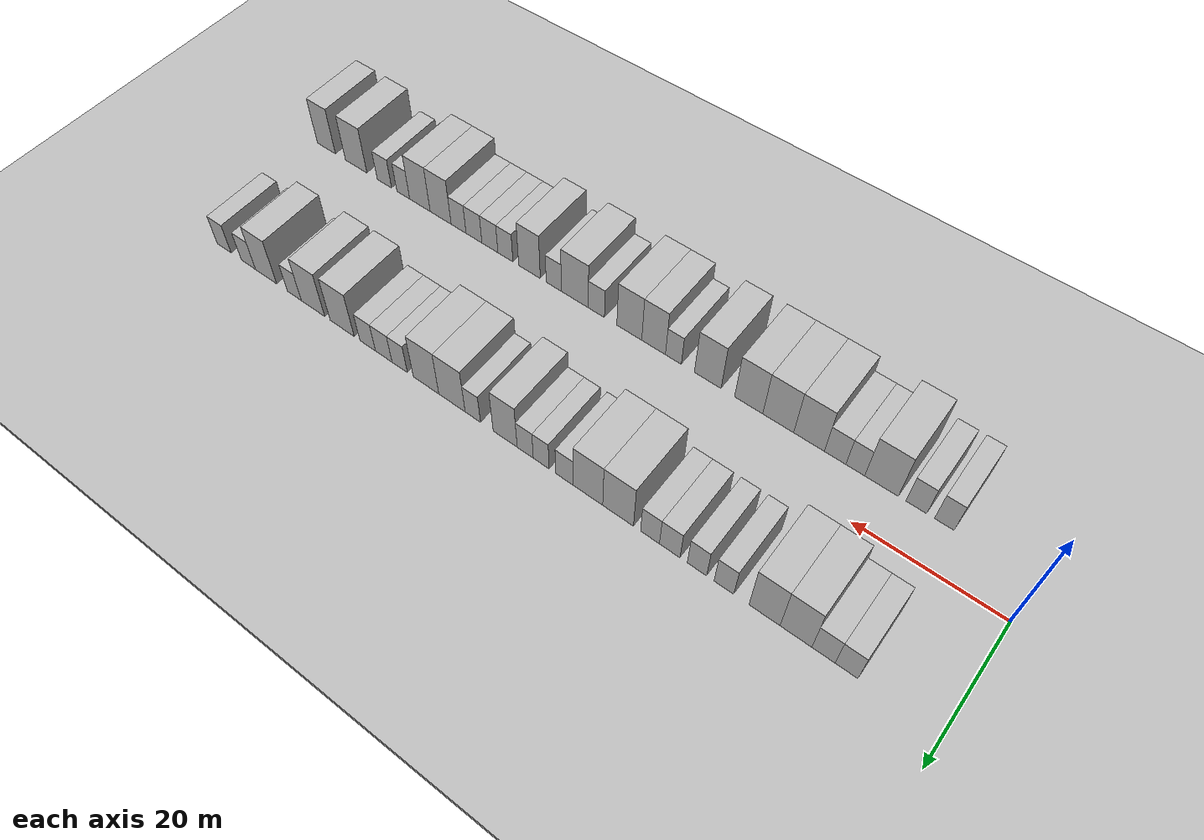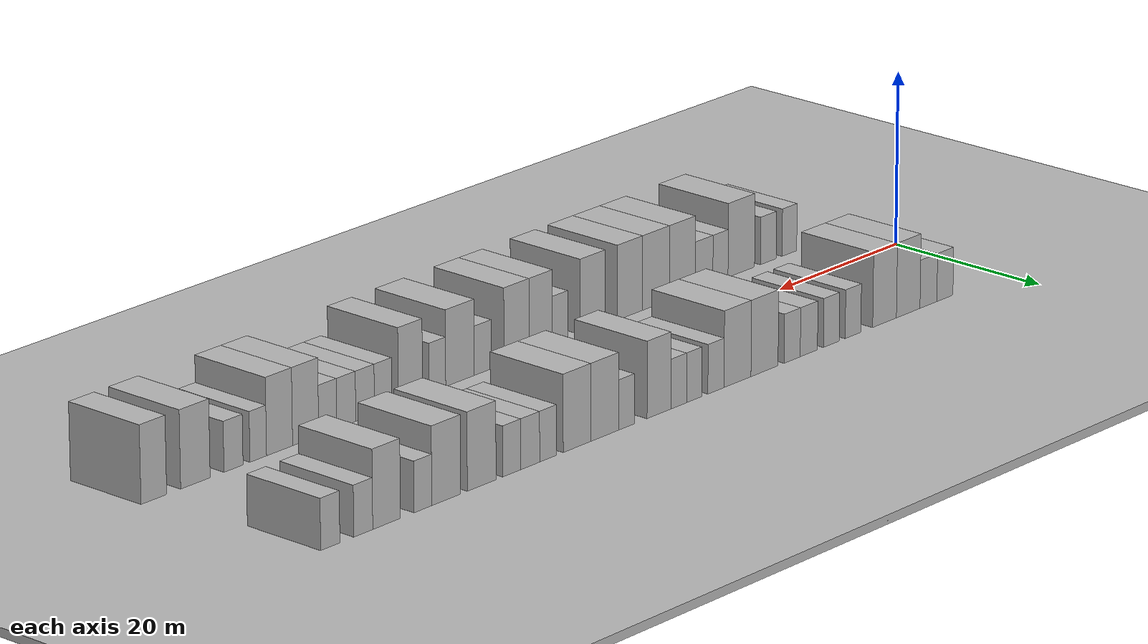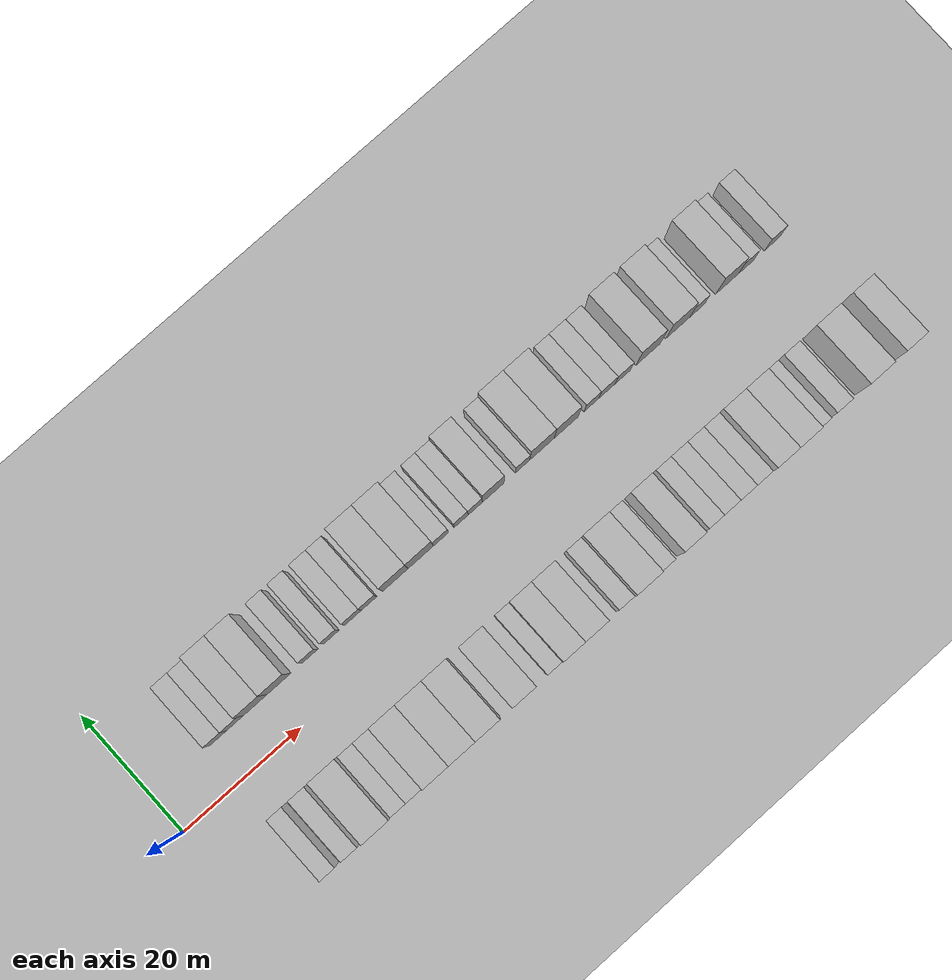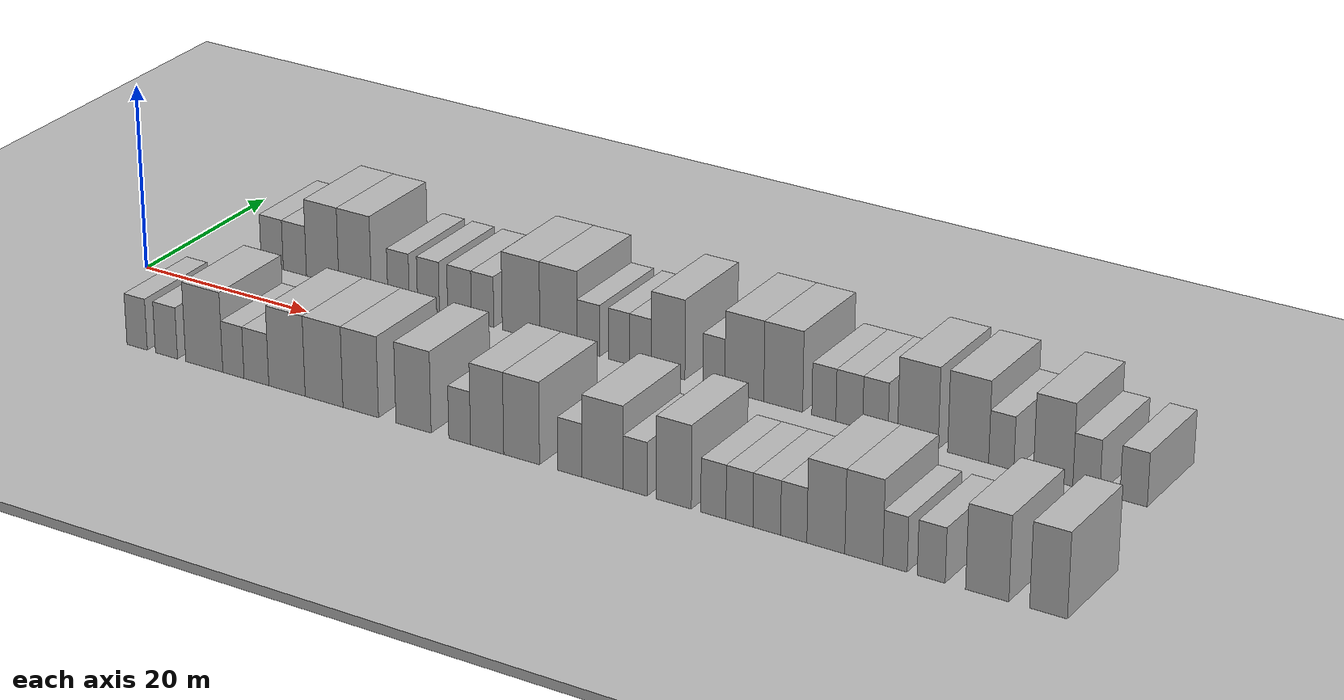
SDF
<sdf version="1.6">
 <world name="default">
  <include><name>ground_plane_1</name><uri>model://HANNAS_ground_plane</uri></include>
  <include>
   <name>ground_plane_2</name>
   <uri>model://HANNAS_ground_plane</uri>
   <pose>100 0 0  0 0 0</pose>
  </include>
  <model name="building_1">
   <static>1</static>
   <pose>11.3908 11.0000 0 0.000000 0.000000 1.570796</pose>
   <link name="link">
    <pose>0 0 3.00 0 0 0</pose>
    <collision name="collision"><geometry><box><size>10.0000 2.7816 6.0000</size></box></geometry></collision>
    <visual name="visual">
     <cast_shadows>0</cast_shadows>
     <geometry><box><size>10.0000 2.7816 6.0000</size></box></geometry>
     <material>
      <script>
       <uri>model://HANNAS_wall/materials/scripts</uri>
       <uri>model://HANNAS_wall/materials/textures</uri>
       <name>vrc/HANNAS_wall</name>
      </script>
     </material>
    </visual>
   </link>
  </model>
  <model name="building_2">
   <static>1</static>
   <pose>14.2303 11.0000 0 0.000000 0.000000 1.570796</pose>
   <link name="link">
    <pose>0 0 3.00 0 0 0</pose>
    <collision name="collision"><geometry><box><size>10.0000 2.8974 6.0000</size></box></geometry></collision>
    <visual name="visual">
     <cast_shadows>0</cast_shadows>
     <geometry><box><size>10.0000 2.8974 6.0000</size></box></geometry>
     <material>
      <script>
       <uri>model://HANNAS_wall/materials/scripts</uri>
       <uri>model://HANNAS_wall/materials/textures</uri>
       <name>vrc/HANNAS_wall</name>
      </script>
     </material>
    </visual>
   </link>
  </model>
  <model name="building_3">
   <static>1</static>
   <pose>17.6931 11.0000 0 0.000000 0.000000 1.570796</pose>
   <link name="link">
    <pose>0 0 4.50 0 0 0</pose>
    <collision name="collision"><geometry><box><size>10.0000 4.0282 9.0000</size></box></geometry></collision>
    <visual name="visual">
     <cast_shadows>0</cast_shadows>
     <geometry><box><size>10.0000 4.0282 9.0000</size></box></geometry>
     <material>
      <script>
       <uri>model://HANNAS_wall/materials/scripts</uri>
       <uri>model://HANNAS_wall/materials/textures</uri>
       <name>vrc/HANNAS_wall</name>
      </script>
     </material>
    </visual>
   </link>
  </model>
  <model name="building_4">
   <static>1</static>
   <pose>21.7171 11.0000 0 0.000000 0.000000 1.570796</pose>
   <link name="link">
    <pose>0 0 4.50 0 0 0</pose>
    <collision name="collision"><geometry><box><size>10.0000 4.0198 9.0000</size></box></geometry></collision>
    <visual name="visual">
     <cast_shadows>0</cast_shadows>
     <geometry><box><size>10.0000 4.0198 9.0000</size></box></geometry>
     <material>
      <script>
       <uri>model://HANNAS_wall/materials/scripts</uri>
       <uri>model://HANNAS_wall/materials/textures</uri>
       <name>vrc/HANNAS_wall</name>
      </script>
     </material>
    </visual>
   </link>
  </model>
  <model name="building_5">
   <static>1</static>
   <pose>27.0392 11.0000 0 0.000000 0.000000 1.570796</pose>
   <link name="link">
    <pose>0 0 3.00 0 0 0</pose>
    <collision name="collision"><geometry><box><size>10.0000 2.6245 6.0000</size></box></geometry></collision>
    <visual name="visual">
     <cast_shadows>0</cast_shadows>
     <geometry><box><size>10.0000 2.6245 6.0000</size></box></geometry>
     <material>
      <script>
       <uri>model://HANNAS_wall/materials/scripts</uri>
       <uri>model://HANNAS_wall/materials/textures</uri>
       <name>vrc/HANNAS_wall</name>
      </script>
     </material>
    </visual>
   </link>
  </model>
  <model name="building_6">
   <static>1</static>
   <pose>30.6633 11.0000 0 0.000000 0.000000 1.570796</pose>
   <link name="link">
    <pose>0 0 3.00 0 0 0</pose>
    <collision name="collision"><geometry><box><size>10.0000 2.6236 6.0000</size></box></geometry></collision>
    <visual name="visual">
     <cast_shadows>0</cast_shadows>
     <geometry><box><size>10.0000 2.6236 6.0000</size></box></geometry>
     <material>
      <script>
       <uri>model://HANNAS_wall/materials/scripts</uri>
       <uri>model://HANNAS_wall/materials/textures</uri>
       <name>vrc/HANNAS_wall</name>
      </script>
     </material>
    </visual>
   </link>
  </model>
  <model name="building_7">
   <static>1</static>
   <pose>34.3985 11.0000 0 0.000000 0.000000 1.570796</pose>
   <link name="link">
    <pose>0 0 3.00 0 0 0</pose>
    <collision name="collision"><geometry><box><size>10.0000 2.8468 6.0000</size></box></geometry></collision>
    <visual name="visual">
     <cast_shadows>0</cast_shadows>
     <geometry><box><size>10.0000 2.8468 6.0000</size></box></geometry>
     <material>
      <script>
       <uri>model://HANNAS_wall/materials/scripts</uri>
       <uri>model://HANNAS_wall/materials/textures</uri>
       <name>vrc/HANNAS_wall</name>
      </script>
     </material>
    </visual>
   </link>
  </model>
  <model name="building_8">
   <static>1</static>
   <pose>37.1475 11.0000 0 0.000000 0.000000 1.570796</pose>
   <link name="link">
    <pose>0 0 3.00 0 0 0</pose>
    <collision name="collision"><geometry><box><size>10.0000 2.6512 6.0000</size></box></geometry></collision>
    <visual name="visual">
     <cast_shadows>0</cast_shadows>
     <geometry><box><size>10.0000 2.6512 6.0000</size></box></geometry>
     <material>
      <script>
       <uri>model://HANNAS_wall/materials/scripts</uri>
       <uri>model://HANNAS_wall/materials/textures</uri>
       <name>vrc/HANNAS_wall</name>
      </script>
     </material>
    </visual>
   </link>
  </model>
  <model name="building_9">
   <static>1</static>
   <pose>41.6836 11.0000 0 0.000000 0.000000 1.570796</pose>
   <link name="link">
    <pose>0 0 4.50 0 0 0</pose>
    <collision name="collision"><geometry><box><size>10.0000 4.4210 9.0000</size></box></geometry></collision>
    <visual name="visual">
     <cast_shadows>0</cast_shadows>
     <geometry><box><size>10.0000 4.4210 9.0000</size></box></geometry>
     <material>
      <script>
       <uri>model://HANNAS_wall/materials/scripts</uri>
       <uri>model://HANNAS_wall/materials/textures</uri>
       <name>vrc/HANNAS_wall</name>
      </script>
     </material>
    </visual>
   </link>
  </model>
  <model name="building_10">
   <static>1</static>
   <pose>46.0706 11.0000 0 0.000000 0.000000 1.570796</pose>
   <link name="link">
    <pose>0 0 4.50 0 0 0</pose>
    <collision name="collision"><geometry><box><size>10.0000 4.3528 9.0000</size></box></geometry></collision>
    <visual name="visual">
     <cast_shadows>0</cast_shadows>
     <geometry><box><size>10.0000 4.3528 9.0000</size></box></geometry>
     <material>
      <script>
       <uri>model://HANNAS_wall/materials/scripts</uri>
       <uri>model://HANNAS_wall/materials/textures</uri>
       <name>vrc/HANNAS_wall</name>
      </script>
     </material>
    </visual>
   </link>
  </model>
  <model name="building_11">
   <static>1</static>
   <pose>49.5463 11.0000 0 0.000000 0.000000 1.570796</pose>
   <link name="link">
    <pose>0 0 3.00 0 0 0</pose>
    <collision name="collision"><geometry><box><size>10.0000 2.5986 6.0000</size></box></geometry></collision>
    <visual name="visual">
     <cast_shadows>0</cast_shadows>
     <geometry><box><size>10.0000 2.5986 6.0000</size></box></geometry>
     <material>
      <script>
       <uri>model://HANNAS_wall/materials/scripts</uri>
       <uri>model://HANNAS_wall/materials/textures</uri>
       <name>vrc/HANNAS_wall</name>
      </script>
     </material>
    </visual>
   </link>
  </model>
  <model name="building_12">
   <static>1</static>
   <pose>53.0524 11.0000 0 0.000000 0.000000 1.570796</pose>
   <link name="link">
    <pose>0 0 3.00 0 0 0</pose>
    <collision name="collision"><geometry><box><size>10.0000 2.4136 6.0000</size></box></geometry></collision>
    <visual name="visual">
     <cast_shadows>0</cast_shadows>
     <geometry><box><size>10.0000 2.4136 6.0000</size></box></geometry>
     <material>
      <script>
       <uri>model://HANNAS_wall/materials/scripts</uri>
       <uri>model://HANNAS_wall/materials/textures</uri>
       <name>vrc/HANNAS_wall</name>
      </script>
     </material>
    </visual>
   </link>
  </model>
  <model name="building_13">
   <static>1</static>
   <pose>55.4988 11.0000 0 0.000000 0.000000 1.570796</pose>
   <link name="link">
    <pose>0 0 3.00 0 0 0</pose>
    <collision name="collision"><geometry><box><size>10.0000 2.4793 6.0000</size></box></geometry></collision>
    <visual name="visual">
     <cast_shadows>0</cast_shadows>
     <geometry><box><size>10.0000 2.4793 6.0000</size></box></geometry>
     <material>
      <script>
       <uri>model://HANNAS_wall/materials/scripts</uri>
       <uri>model://HANNAS_wall/materials/textures</uri>
       <name>vrc/HANNAS_wall</name>
      </script>
     </material>
    </visual>
   </link>
  </model>
  <model name="building_14">
   <static>1</static>
   <pose>58.6206 11.0000 0 0.000000 0.000000 1.570796</pose>
   <link name="link">
    <pose>0 0 4.50 0 0 0</pose>
    <collision name="collision"><geometry><box><size>10.0000 3.7642 9.0000</size></box></geometry></collision>
    <visual name="visual">
     <cast_shadows>0</cast_shadows>
     <geometry><box><size>10.0000 3.7642 9.0000</size></box></geometry>
     <material>
      <script>
       <uri>model://HANNAS_wall/materials/scripts</uri>
       <uri>model://HANNAS_wall/materials/textures</uri>
       <name>vrc/HANNAS_wall</name>
      </script>
     </material>
    </visual>
   </link>
  </model>
  <model name="building_15">
   <static>1</static>
   <pose>63.7367 11.0000 0 0.000000 0.000000 1.570796</pose>
   <link name="link">
    <pose>0 0 3.00 0 0 0</pose>
    <collision name="collision"><geometry><box><size>10.0000 2.4681 6.0000</size></box></geometry></collision>
    <visual name="visual">
     <cast_shadows>0</cast_shadows>
     <geometry><box><size>10.0000 2.4681 6.0000</size></box></geometry>
     <material>
      <script>
       <uri>model://HANNAS_wall/materials/scripts</uri>
       <uri>model://HANNAS_wall/materials/textures</uri>
       <name>vrc/HANNAS_wall</name>
      </script>
     </material>
    </visual>
   </link>
  </model>
  <model name="building_16">
   <static>1</static>
   <pose>67.1191 11.0000 0 0.000000 0.000000 1.570796</pose>
   <link name="link">
    <pose>0 0 4.50 0 0 0</pose>
    <collision name="collision"><geometry><box><size>10.0000 4.2967 9.0000</size></box></geometry></collision>
    <visual name="visual">
     <cast_shadows>0</cast_shadows>
     <geometry><box><size>10.0000 4.2967 9.0000</size></box></geometry>
     <material>
      <script>
       <uri>model://HANNAS_wall/materials/scripts</uri>
       <uri>model://HANNAS_wall/materials/textures</uri>
       <name>vrc/HANNAS_wall</name>
      </script>
     </material>
    </visual>
   </link>
  </model>
  <model name="building_17">
   <static>1</static>
   <pose>71.3927 11.0000 0 0.000000 0.000000 1.570796</pose>
   <link name="link">
    <pose>0 0 4.50 0 0 0</pose>
    <collision name="collision"><geometry><box><size>10.0000 4.2505 9.0000</size></box></geometry></collision>
    <visual name="visual">
     <cast_shadows>0</cast_shadows>
     <geometry><box><size>10.0000 4.2505 9.0000</size></box></geometry>
     <material>
      <script>
       <uri>model://HANNAS_wall/materials/scripts</uri>
       <uri>model://HANNAS_wall/materials/textures</uri>
       <name>vrc/HANNAS_wall</name>
      </script>
     </material>
    </visual>
   </link>
  </model>
  <model name="building_18">
   <static>1</static>
   <pose>75.8193 11.0000 0 0.000000 0.000000 1.570796</pose>
   <link name="link">
    <pose>0 0 3.00 0 0 0</pose>
    <collision name="collision"><geometry><box><size>10.0000 2.6027 6.0000</size></box></geometry></collision>
    <visual name="visual">
     <cast_shadows>0</cast_shadows>
     <geometry><box><size>10.0000 2.6027 6.0000</size></box></geometry>
     <material>
      <script>
       <uri>model://HANNAS_wall/materials/scripts</uri>
       <uri>model://HANNAS_wall/materials/textures</uri>
       <name>vrc/HANNAS_wall</name>
      </script>
     </material>
    </visual>
   </link>
  </model>
  <model name="building_19">
   <static>1</static>
   <pose>78.5585 11.0000 0 0.000000 0.000000 1.570796</pose>
   <link name="link">
    <pose>0 0 3.00 0 0 0</pose>
    <collision name="collision"><geometry><box><size>10.0000 2.8757 6.0000</size></box></geometry></collision>
    <visual name="visual">
     <cast_shadows>0</cast_shadows>
     <geometry><box><size>10.0000 2.8757 6.0000</size></box></geometry>
     <material>
      <script>
       <uri>model://HANNAS_wall/materials/scripts</uri>
       <uri>model://HANNAS_wall/materials/textures</uri>
       <name>vrc/HANNAS_wall</name>
      </script>
     </material>
    </visual>
   </link>
  </model>
  <model name="building_20">
   <static>1</static>
   <pose>81.3552 11.0000 0 0.000000 0.000000 1.570796</pose>
   <link name="link">
    <pose>0 0 3.00 0 0 0</pose>
    <collision name="collision"><geometry><box><size>10.0000 2.7176 6.0000</size></box></geometry></collision>
    <visual name="visual">
     <cast_shadows>0</cast_shadows>
     <geometry><box><size>10.0000 2.7176 6.0000</size></box></geometry>
     <material>
      <script>
       <uri>model://HANNAS_wall/materials/scripts</uri>
       <uri>model://HANNAS_wall/materials/textures</uri>
       <name>vrc/HANNAS_wall</name>
      </script>
     </material>
    </visual>
   </link>
  </model>
  <model name="building_21">
   <static>1</static>
   <pose>85.8590 11.0000 0 0.000000 0.000000 1.570796</pose>
   <link name="link">
    <pose>0 0 4.50 0 0 0</pose>
    <collision name="collision"><geometry><box><size>10.0000 4.2899 9.0000</size></box></geometry></collision>
    <visual name="visual">
     <cast_shadows>0</cast_shadows>
     <geometry><box><size>10.0000 4.2899 9.0000</size></box></geometry>
     <material>
      <script>
       <uri>model://HANNAS_wall/materials/scripts</uri>
       <uri>model://HANNAS_wall/materials/textures</uri>
       <name>vrc/HANNAS_wall</name>
      </script>
     </material>
    </visual>
   </link>
  </model>
  <model name="building_22">
   <static>1</static>
   <pose>91.1369 11.0000 0 0.000000 0.000000 1.570796</pose>
   <link name="link">
    <pose>0 0 4.50 0 0 0</pose>
    <collision name="collision"><geometry><box><size>10.0000 4.2660 9.0000</size></box></geometry></collision>
    <visual name="visual">
     <cast_shadows>0</cast_shadows>
     <geometry><box><size>10.0000 4.2660 9.0000</size></box></geometry>
     <material>
      <script>
       <uri>model://HANNAS_wall/materials/scripts</uri>
       <uri>model://HANNAS_wall/materials/textures</uri>
       <name>vrc/HANNAS_wall</name>
      </script>
     </material>
    </visual>
   </link>
  </model>
  <model name="building_23">
   <static>1</static>
   <pose>94.5682 11.0000 0 0.000000 0.000000 1.570796</pose>
   <link name="link">
    <pose>0 0 3.00 0 0 0</pose>
    <collision name="collision"><geometry><box><size>10.0000 2.5964 6.0000</size></box></geometry></collision>
    <visual name="visual">
     <cast_shadows>0</cast_shadows>
     <geometry><box><size>10.0000 2.5964 6.0000</size></box></geometry>
     <material>
      <script>
       <uri>model://HANNAS_wall/materials/scripts</uri>
       <uri>model://HANNAS_wall/materials/textures</uri>
       <name>vrc/HANNAS_wall</name>
      </script>
     </material>
    </visual>
   </link>
  </model>
  <model name="building_24">
   <static>1</static>
   <pose>99.8777 11.0000 0 0.000000 0.000000 1.570796</pose>
   <link name="link">
    <pose>0 0 4.50 0 0 0</pose>
    <collision name="collision"><geometry><box><size>10.0000 4.0226 9.0000</size></box></geometry></collision>
    <visual name="visual">
     <cast_shadows>0</cast_shadows>
     <geometry><box><size>10.0000 4.0226 9.0000</size></box></geometry>
     <material>
      <script>
       <uri>model://HANNAS_wall/materials/scripts</uri>
       <uri>model://HANNAS_wall/materials/textures</uri>
       <name>vrc/HANNAS_wall</name>
      </script>
     </material>
    </visual>
   </link>
  </model>
  <model name="building_25">
   <static>1</static>
   <pose>103.2576 11.0000 0 0.000000 0.000000 1.570796</pose>
   <link name="link">
    <pose>0 0 3.00 0 0 0</pose>
    <collision name="collision"><geometry><box><size>10.0000 2.7373 6.0000</size></box></geometry></collision>
    <visual name="visual">
     <cast_shadows>0</cast_shadows>
     <geometry><box><size>10.0000 2.7373 6.0000</size></box></geometry>
     <material>
      <script>
       <uri>model://HANNAS_wall/materials/scripts</uri>
       <uri>model://HANNAS_wall/materials/textures</uri>
       <name>vrc/HANNAS_wall</name>
      </script>
     </material>
    </visual>
   </link>
  </model>
  <model name="building_26">
   <static>1</static>
   <pose>107.9982 11.0000 0 0.000000 0.000000 1.570796</pose>
   <link name="link">
    <pose>0 0 3.00 0 0 0</pose>
    <collision name="collision"><geometry><box><size>10.0000 2.7439 6.0000</size></box></geometry></collision>
    <visual name="visual">
     <cast_shadows>0</cast_shadows>
     <geometry><box><size>10.0000 2.7439 6.0000</size></box></geometry>
     <material>
      <script>
       <uri>model://HANNAS_wall/materials/scripts</uri>
       <uri>model://HANNAS_wall/materials/textures</uri>
       <name>vrc/HANNAS_wall</name>
      </script>
     </material>
    </visual>
   </link>
  </model>
  <model name="building_54">
   <static>1</static>
   <pose>11.2532 -11.0000 0 0.000000 0.000000 1.570796</pose>
   <link name="link">
    <pose>0 0 3.00 0 0 0</pose>
    <collision name="collision"><geometry><box><size>10.0000 2.5065 6.0000</size></box></geometry></collision>
    <visual name="visual">
     <cast_shadows>0</cast_shadows>
     <geometry><box><size>10.0000 2.5065 6.0000</size></box></geometry>
     <material>
      <script>
       <uri>model://HANNAS_wall/materials/scripts</uri>
       <uri>model://HANNAS_wall/materials/textures</uri>
       <name>vrc/HANNAS_wall</name>
      </script>
     </material>
    </visual>
   </link>
  </model>
  <model name="building_55">
   <static>1</static>
   <pose>14.8578 -11.0000 0 0.000000 0.000000 1.570796</pose>
   <link name="link">
    <pose>0 0 3.00 0 0 0</pose>
    <collision name="collision"><geometry><box><size>10.0000 2.7028 6.0000</size></box></geometry></collision>
    <visual name="visual">
     <cast_shadows>0</cast_shadows>
     <geometry><box><size>10.0000 2.7028 6.0000</size></box></geometry>
     <material>
      <script>
       <uri>model://HANNAS_wall/materials/scripts</uri>
       <uri>model://HANNAS_wall/materials/textures</uri>
       <name>vrc/HANNAS_wall</name>
      </script>
     </material>
    </visual>
   </link>
  </model>
  <model name="building_56">
   <static>1</static>
   <pose>19.4526 -11.0000 0 0.000000 0.000000 1.570796</pose>
   <link name="link">
    <pose>0 0 4.50 0 0 0</pose>
    <collision name="collision"><geometry><box><size>10.0000 4.4867 9.0000</size></box></geometry></collision>
    <visual name="visual">
     <cast_shadows>0</cast_shadows>
     <geometry><box><size>10.0000 4.4867 9.0000</size></box></geometry>
     <material>
      <script>
       <uri>model://HANNAS_wall/materials/scripts</uri>
       <uri>model://HANNAS_wall/materials/textures</uri>
       <name>vrc/HANNAS_wall</name>
      </script>
     </material>
    </visual>
   </link>
  </model>
  <model name="building_57">
   <static>1</static>
   <pose>22.9692 -11.0000 0 0.000000 0.000000 1.570796</pose>
   <link name="link">
    <pose>0 0 3.00 0 0 0</pose>
    <collision name="collision"><geometry><box><size>10.0000 2.5466 6.0000</size></box></geometry></collision>
    <visual name="visual">
     <cast_shadows>0</cast_shadows>
     <geometry><box><size>10.0000 2.5466 6.0000</size></box></geometry>
     <material>
      <script>
       <uri>model://HANNAS_wall/materials/scripts</uri>
       <uri>model://HANNAS_wall/materials/textures</uri>
       <name>vrc/HANNAS_wall</name>
      </script>
     </material>
    </visual>
   </link>
  </model>
  <model name="building_58">
   <static>1</static>
   <pose>25.7187 -11.0000 0 0.000000 0.000000 1.570796</pose>
   <link name="link">
    <pose>0 0 3.00 0 0 0</pose>
    <collision name="collision"><geometry><box><size>10.0000 2.9522 6.0000</size></box></geometry></collision>
    <visual name="visual">
     <cast_shadows>0</cast_shadows>
     <geometry><box><size>10.0000 2.9522 6.0000</size></box></geometry>
     <material>
      <script>
       <uri>model://HANNAS_wall/materials/scripts</uri>
       <uri>model://HANNAS_wall/materials/textures</uri>
       <name>vrc/HANNAS_wall</name>
      </script>
     </material>
    </visual>
   </link>
  </model>
  <model name="building_59">
   <static>1</static>
   <pose>29.3431 -11.0000 0 0.000000 0.000000 1.570796</pose>
   <link name="link">
    <pose>0 0 4.50 0 0 0</pose>
    <collision name="collision"><geometry><box><size>10.0000 4.2965 9.0000</size></box></geometry></collision>
    <visual name="visual">
     <cast_shadows>0</cast_shadows>
     <geometry><box><size>10.0000 4.2965 9.0000</size></box></geometry>
     <material>
      <script>
       <uri>model://HANNAS_wall/materials/scripts</uri>
       <uri>model://HANNAS_wall/materials/textures</uri>
       <name>vrc/HANNAS_wall</name>
      </script>
     </material>
    </visual>
   </link>
  </model>
  <model name="building_60">
   <static>1</static>
   <pose>33.7008 -11.0000 0 0.000000 0.000000 1.570796</pose>
   <link name="link">
    <pose>0 0 4.50 0 0 0</pose>
    <collision name="collision"><geometry><box><size>10.0000 4.4189 9.0000</size></box></geometry></collision>
    <visual name="visual">
     <cast_shadows>0</cast_shadows>
     <geometry><box><size>10.0000 4.4189 9.0000</size></box></geometry>
     <material>
      <script>
       <uri>model://HANNAS_wall/materials/scripts</uri>
       <uri>model://HANNAS_wall/materials/textures</uri>
       <name>vrc/HANNAS_wall</name>
      </script>
     </material>
    </visual>
   </link>
  </model>
  <model name="building_61">
   <static>1</static>
   <pose>37.9667 -11.0000 0 0.000000 0.000000 1.570796</pose>
   <link name="link">
    <pose>0 0 4.50 0 0 0</pose>
    <collision name="collision"><geometry><box><size>10.0000 4.1129 9.0000</size></box></geometry></collision>
    <visual name="visual">
     <cast_shadows>0</cast_shadows>
     <geometry><box><size>10.0000 4.1129 9.0000</size></box></geometry>
     <material>
      <script>
       <uri>model://HANNAS_wall/materials/scripts</uri>
       <uri>model://HANNAS_wall/materials/textures</uri>
       <name>vrc/HANNAS_wall</name>
      </script>
     </material>
    </visual>
   </link>
  </model>
  <model name="building_62">
   <static>1</static>
   <pose>44.0270 -11.0000 0 0.000000 0.000000 1.570796</pose>
   <link name="link">
    <pose>0 0 4.50 0 0 0</pose>
    <collision name="collision"><geometry><box><size>10.0000 4.0076 9.0000</size></box></geometry></collision>
    <visual name="visual">
     <cast_shadows>0</cast_shadows>
     <geometry><box><size>10.0000 4.0076 9.0000</size></box></geometry>
     <material>
      <script>
       <uri>model://HANNAS_wall/materials/scripts</uri>
       <uri>model://HANNAS_wall/materials/textures</uri>
       <name>vrc/HANNAS_wall</name>
      </script>
     </material>
    </visual>
   </link>
  </model>
  <model name="building_63">
   <static>1</static>
   <pose>49.2549 -11.0000 0 0.000000 0.000000 1.570796</pose>
   <link name="link">
    <pose>0 0 3.00 0 0 0</pose>
    <collision name="collision"><geometry><box><size>10.0000 2.4482 6.0000</size></box></geometry></collision>
    <visual name="visual">
     <cast_shadows>0</cast_shadows>
     <geometry><box><size>10.0000 2.4482 6.0000</size></box></geometry>
     <material>
      <script>
       <uri>model://HANNAS_wall/materials/scripts</uri>
       <uri>model://HANNAS_wall/materials/textures</uri>
       <name>vrc/HANNAS_wall</name>
      </script>
     </material>
    </visual>
   </link>
  </model>
  <model name="building_64">
   <static>1</static>
   <pose>52.3309 -11.0000 0 0.000000 0.000000 1.570796</pose>
   <link name="link">
    <pose>0 0 4.50 0 0 0</pose>
    <collision name="collision"><geometry><box><size>10.0000 3.7037 9.0000</size></box></geometry></collision>
    <visual name="visual">
     <cast_shadows>0</cast_shadows>
     <geometry><box><size>10.0000 3.7037 9.0000</size></box></geometry>
     <material>
      <script>
       <uri>model://HANNAS_wall/materials/scripts</uri>
       <uri>model://HANNAS_wall/materials/textures</uri>
       <name>vrc/HANNAS_wall</name>
      </script>
     </material>
    </visual>
   </link>
  </model>
  <model name="building_65">
   <static>1</static>
   <pose>56.1618 -11.0000 0 0.000000 0.000000 1.570796</pose>
   <link name="link">
    <pose>0 0 4.50 0 0 0</pose>
    <collision name="collision"><geometry><box><size>10.0000 3.9581 9.0000</size></box></geometry></collision>
    <visual name="visual">
     <cast_shadows>0</cast_shadows>
     <geometry><box><size>10.0000 3.9581 9.0000</size></box></geometry>
     <material>
      <script>
       <uri>model://HANNAS_wall/materials/scripts</uri>
       <uri>model://HANNAS_wall/materials/textures</uri>
       <name>vrc/HANNAS_wall</name>
      </script>
     </material>
    </visual>
   </link>
  </model>
  <model name="building_66">
   <static>1</static>
   <pose>61.4617 -11.0000 0 0.000000 0.000000 1.570796</pose>
   <link name="link">
    <pose>0 0 3.00 0 0 0</pose>
    <collision name="collision"><geometry><box><size>10.0000 2.6417 6.0000</size></box></geometry></collision>
    <visual name="visual">
     <cast_shadows>0</cast_shadows>
     <geometry><box><size>10.0000 2.6417 6.0000</size></box></geometry>
     <material>
      <script>
       <uri>model://HANNAS_wall/materials/scripts</uri>
       <uri>model://HANNAS_wall/materials/textures</uri>
       <name>vrc/HANNAS_wall</name>
      </script>
     </material>
    </visual>
   </link>
  </model>
  <model name="building_67">
   <static>1</static>
   <pose>65.0019 -11.0000 0 0.000000 0.000000 1.570796</pose>
   <link name="link">
    <pose>0 0 4.50 0 0 0</pose>
    <collision name="collision"><geometry><box><size>10.0000 4.4386 9.0000</size></box></geometry></collision>
    <visual name="visual">
     <cast_shadows>0</cast_shadows>
     <geometry><box><size>10.0000 4.4386 9.0000</size></box></geometry>
     <material>
      <script>
       <uri>model://HANNAS_wall/materials/scripts</uri>
       <uri>model://HANNAS_wall/materials/textures</uri>
       <name>vrc/HANNAS_wall</name>
      </script>
     </material>
    </visual>
   </link>
  </model>
  <model name="building_68">
   <static>1</static>
   <pose>68.5035 -11.0000 0 0.000000 0.000000 1.570796</pose>
   <link name="link">
    <pose>0 0 3.00 0 0 0</pose>
    <collision name="collision"><geometry><box><size>10.0000 2.5646 6.0000</size></box></geometry></collision>
    <visual name="visual">
     <cast_shadows>0</cast_shadows>
     <geometry><box><size>10.0000 2.5646 6.0000</size></box></geometry>
     <material>
      <script>
       <uri>model://HANNAS_wall/materials/scripts</uri>
       <uri>model://HANNAS_wall/materials/textures</uri>
       <name>vrc/HANNAS_wall</name>
      </script>
     </material>
    </visual>
   </link>
  </model>
  <model name="building_69">
   <static>1</static>
   <pose>72.6352 -11.0000 0 0.000000 0.000000 1.570796</pose>
   <link name="link">
    <pose>0 0 4.50 0 0 0</pose>
    <collision name="collision"><geometry><box><size>10.0000 3.6988 9.0000</size></box></geometry></collision>
    <visual name="visual">
     <cast_shadows>0</cast_shadows>
     <geometry><box><size>10.0000 3.6988 9.0000</size></box></geometry>
     <material>
      <script>
       <uri>model://HANNAS_wall/materials/scripts</uri>
       <uri>model://HANNAS_wall/materials/textures</uri>
       <name>vrc/HANNAS_wall</name>
      </script>
     </material>
    </visual>
   </link>
  </model>
  <model name="building_70">
   <static>1</static>
   <pose>76.7981 -11.0000 0 0.000000 0.000000 1.570796</pose>
   <link name="link">
    <pose>0 0 3.00 0 0 0</pose>
    <collision name="collision"><geometry><box><size>10.0000 2.6270 6.0000</size></box></geometry></collision>
    <visual name="visual">
     <cast_shadows>0</cast_shadows>
     <geometry><box><size>10.0000 2.6270 6.0000</size></box></geometry>
     <material>
      <script>
       <uri>model://HANNAS_wall/materials/scripts</uri>
       <uri>model://HANNAS_wall/materials/textures</uri>
       <name>vrc/HANNAS_wall</name>
      </script>
     </material>
    </visual>
   </link>
  </model>
  <model name="building_71">
   <static>1</static>
   <pose>79.5210 -11.0000 0 0.000000 0.000000 1.570796</pose>
   <link name="link">
    <pose>0 0 3.00 0 0 0</pose>
    <collision name="collision"><geometry><box><size>10.0000 2.8189 6.0000</size></box></geometry></collision>
    <visual name="visual">
     <cast_shadows>0</cast_shadows>
     <geometry><box><size>10.0000 2.8189 6.0000</size></box></geometry>
     <material>
      <script>
       <uri>model://HANNAS_wall/materials/scripts</uri>
       <uri>model://HANNAS_wall/materials/textures</uri>
       <name>vrc/HANNAS_wall</name>
      </script>
     </material>
    </visual>
   </link>
  </model>
  <model name="building_72">
   <static>1</static>
   <pose>82.3530 -11.0000 0 0.000000 0.000000 1.570796</pose>
   <link name="link">
    <pose>0 0 3.00 0 0 0</pose>
    <collision name="collision"><geometry><box><size>10.0000 2.8451 6.0000</size></box></geometry></collision>
    <visual name="visual">
     <cast_shadows>0</cast_shadows>
     <geometry><box><size>10.0000 2.8451 6.0000</size></box></geometry>
     <material>
      <script>
       <uri>model://HANNAS_wall/materials/scripts</uri>
       <uri>model://HANNAS_wall/materials/textures</uri>
       <name>vrc/HANNAS_wall</name>
      </script>
     </material>
    </visual>
   </link>
  </model>
  <model name="building_73">
   <static>1</static>
   <pose>85.1262 -11.0000 0 0.000000 0.000000 1.570796</pose>
   <link name="link">
    <pose>0 0 3.00 0 0 0</pose>
    <collision name="collision"><geometry><box><size>10.0000 2.7013 6.0000</size></box></geometry></collision>
    <visual name="visual">
     <cast_shadows>0</cast_shadows>
     <geometry><box><size>10.0000 2.7013 6.0000</size></box></geometry>
     <material>
      <script>
       <uri>model://HANNAS_wall/materials/scripts</uri>
       <uri>model://HANNAS_wall/materials/textures</uri>
       <name>vrc/HANNAS_wall</name>
      </script>
     </material>
    </visual>
   </link>
  </model>
  <model name="building_74">
   <static>1</static>
   <pose>88.4095 -11.0000 0 0.000000 0.000000 1.570796</pose>
   <link name="link">
    <pose>0 0 4.50 0 0 0</pose>
    <collision name="collision"><geometry><box><size>10.0000 3.8652 9.0000</size></box></geometry></collision>
    <visual name="visual">
     <cast_shadows>0</cast_shadows>
     <geometry><box><size>10.0000 3.8652 9.0000</size></box></geometry>
     <material>
      <script>
       <uri>model://HANNAS_wall/materials/scripts</uri>
       <uri>model://HANNAS_wall/materials/textures</uri>
       <name>vrc/HANNAS_wall</name>
      </script>
     </material>
    </visual>
   </link>
  </model>
  <model name="building_75">
   <static>1</static>
   <pose>92.2559 -11.0000 0 0.000000 0.000000 1.570796</pose>
   <link name="link">
    <pose>0 0 4.50 0 0 0</pose>
    <collision name="collision"><geometry><box><size>10.0000 3.8276 9.0000</size></box></geometry></collision>
    <visual name="visual">
     <cast_shadows>0</cast_shadows>
     <geometry><box><size>10.0000 3.8276 9.0000</size></box></geometry>
     <material>
      <script>
       <uri>model://HANNAS_wall/materials/scripts</uri>
       <uri>model://HANNAS_wall/materials/textures</uri>
       <name>vrc/HANNAS_wall</name>
      </script>
     </material>
    </visual>
   </link>
  </model>
  <model name="building_76">
   <static>1</static>
   <pose>95.3848 -11.0000 0 0.000000 0.000000 1.570796</pose>
   <link name="link">
    <pose>0 0 3.00 0 0 0</pose>
    <collision name="collision"><geometry><box><size>10.0000 2.4303 6.0000</size></box></geometry></collision>
    <visual name="visual">
     <cast_shadows>0</cast_shadows>
     <geometry><box><size>10.0000 2.4303 6.0000</size></box></geometry>
     <material>
      <script>
       <uri>model://HANNAS_wall/materials/scripts</uri>
       <uri>model://HANNAS_wall/materials/textures</uri>
       <name>vrc/HANNAS_wall</name>
      </script>
     </material>
    </visual>
   </link>
  </model>
  <model name="building_77">
   <static>1</static>
   <pose>98.9819 -11.0000 0 0.000000 0.000000 1.570796</pose>
   <link name="link">
    <pose>0 0 3.00 0 0 0</pose>
    <collision name="collision"><geometry><box><size>10.0000 2.7639 6.0000</size></box></geometry></collision>
    <visual name="visual">
     <cast_shadows>0</cast_shadows>
     <geometry><box><size>10.0000 2.7639 6.0000</size></box></geometry>
     <material>
      <script>
       <uri>model://HANNAS_wall/materials/scripts</uri>
       <uri>model://HANNAS_wall/materials/textures</uri>
       <name>vrc/HANNAS_wall</name>
      </script>
     </material>
    </visual>
   </link>
  </model>
  <model name="building_78">
   <static>1</static>
   <pose>104.4770 -11.0000 0 0.000000 0.000000 1.570796</pose>
   <link name="link">
    <pose>0 0 4.50 0 0 0</pose>
    <collision name="collision"><geometry><box><size>10.0000 4.2263 9.0000</size></box></geometry></collision>
    <visual name="visual">
     <cast_shadows>0</cast_shadows>
     <geometry><box><size>10.0000 4.2263 9.0000</size></box></geometry>
     <material>
      <script>
       <uri>model://HANNAS_wall/materials/scripts</uri>
       <uri>model://HANNAS_wall/materials/textures</uri>
       <name>vrc/HANNAS_wall</name>
      </script>
     </material>
    </visual>
   </link>
  </model>
  <model name="building_79">
   <static>1</static>
   <pose>110.4082 -11.0000 0 0.000000 0.000000 1.570796</pose>
   <link name="link">
    <pose>0 0 4.50 0 0 0</pose>
    <collision name="collision"><geometry><box><size>10.0000 3.6362 9.0000</size></box></geometry></collision>
    <visual name="visual">
     <cast_shadows>0</cast_shadows>
     <geometry><box><size>10.0000 3.6362 9.0000</size></box></geometry>
     <material>
      <script>
       <uri>model://HANNAS_wall/materials/scripts</uri>
       <uri>model://HANNAS_wall/materials/textures</uri>
       <name>vrc/HANNAS_wall</name>
      </script>
     </material>
    </visual>
   </link>
  </model>
 </world>
</sdf>
